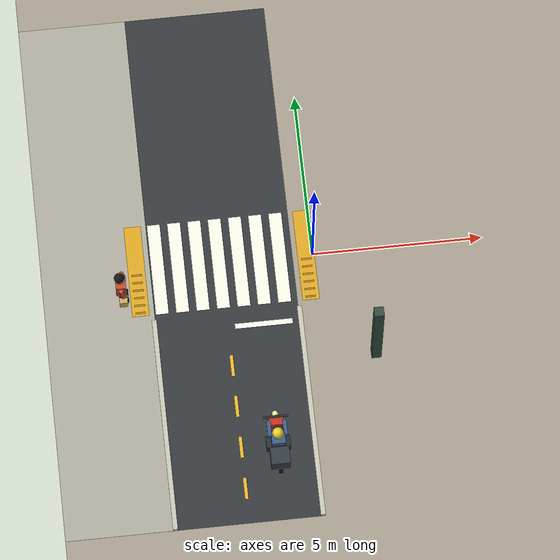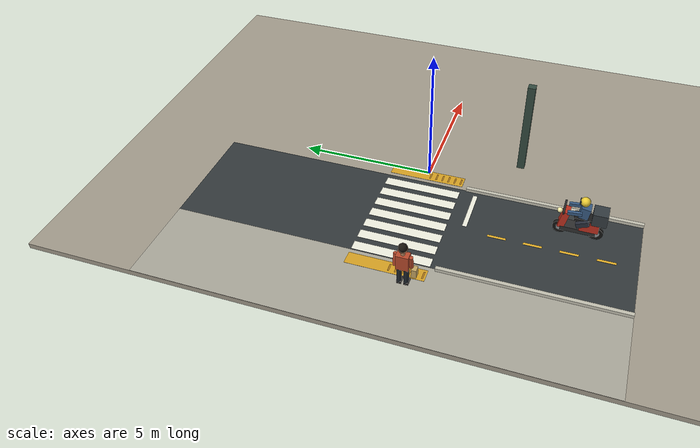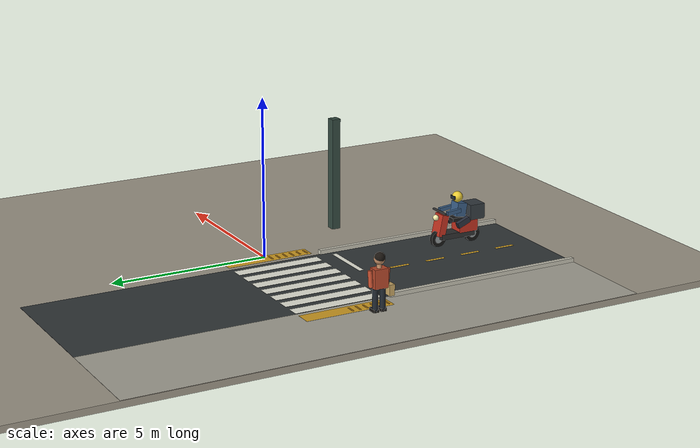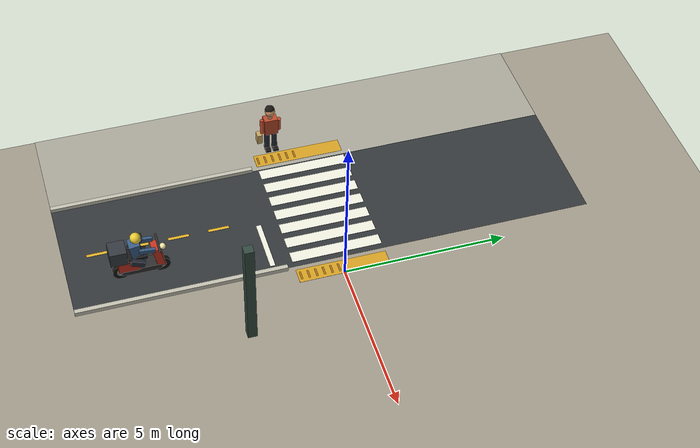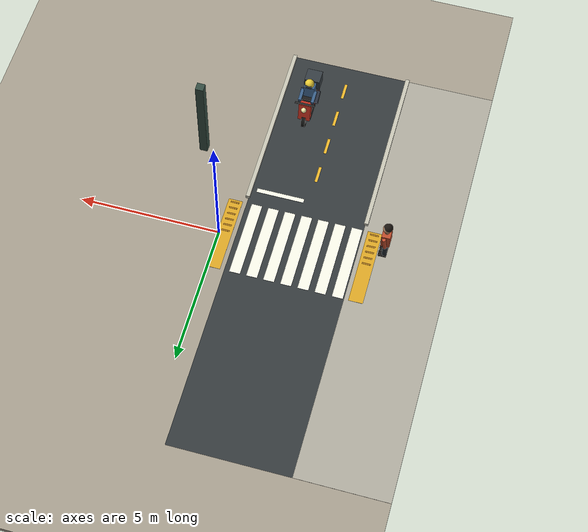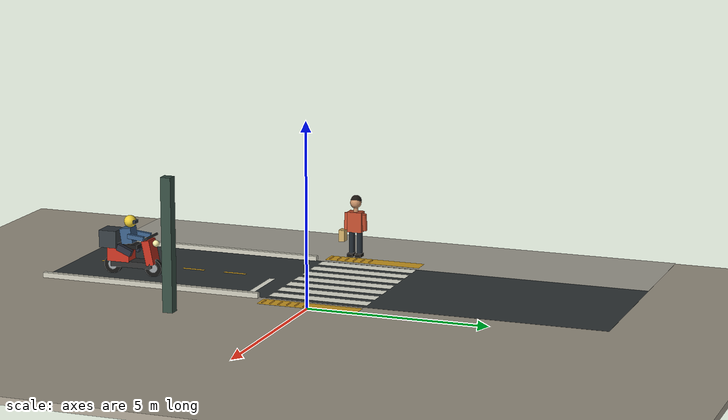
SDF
<sdf version="1.10">
 <world name="swan_market">
  <model name="ground">
   <static>true</static>
   <pose>15 0 -0.1 0 0 0</pose>
   <link name="body">
    <collision name="box_collision"><geometry><box><size>46 24 0.2</size></box></geometry></collision>
    <visual name="box_visual">
     <geometry><box><size>46 24 0.2</size></box></geometry>
     <material><ambient>0.64 0.61 0.55 1</ambient><diffuse>0.64 0.61 0.55 1</diffuse></material>
    </visual>
   </link>
  </model>
  <model name="paving_joint_-1">
   <static>true</static>
   <pose>-1 0 0.0045 0 0 0</pose>
   <link name="body">
    <visual name="box_visual">
     <geometry><box><size>0.025 5.2 0.001</size></box></geometry>
     <material><ambient>0.67 0.64 0.57 1</ambient><diffuse>0.67 0.64 0.57 1</diffuse></material>
    </visual>
   </link>
  </model>
  <model name="entrance_road">
   <static>true</static>
   <pose>-2.7 0 0.01 0 0 0</pose>
   <link name="body">
    <visual name="box_visual">
     <geometry><box><size>4.2 16 0.004</size></box></geometry>
     <material><ambient>0.2 0.22 0.23 1</ambient><diffuse>0.2 0.22 0.23 1</diffuse></material>
    </visual>
   </link>
  </model>
  <model name="entrance_sidewalk_west">
   <static>true</static>
   <pose>-6.4 0 0.014 0 0 0</pose>
   <link name="body">
    <visual name="box_visual">
     <geometry><box><size>3.2 16 0.004</size></box></geometry>
     <material><ambient>0.67 0.66 0.61 1</ambient><diffuse>0.67 0.66 0.61 1</diffuse></material>
    </visual>
   </link>
  </model>
  <model name="crosswalk_stripe_0">
   <static>true</static>
   <pose>-4.57 0 0.016 0 0 0</pose>
   <link name="body">
    <visual name="box_visual">
     <geometry><box><size>0.38 2.8 0.003</size></box></geometry>
     <material><ambient>0.95 0.95 0.89 1</ambient><diffuse>0.95 0.95 0.89 1</diffuse></material>
    </visual>
   </link>
  </model>
  <model name="crosswalk_stripe_1">
   <static>true</static>
   <pose>-3.97 0 0.016 0 0 0</pose>
   <link name="body">
    <visual name="box_visual">
     <geometry><box><size>0.38 2.8 0.003</size></box></geometry>
     <material><ambient>0.95 0.95 0.89 1</ambient><diffuse>0.95 0.95 0.89 1</diffuse></material>
    </visual>
   </link>
  </model>
  <model name="crosswalk_stripe_2">
   <static>true</static>
   <pose>-3.37 0 0.016 0 0 0</pose>
   <link name="body">
    <visual name="box_visual">
     <geometry><box><size>0.38 2.8 0.003</size></box></geometry>
     <material><ambient>0.95 0.95 0.89 1</ambient><diffuse>0.95 0.95 0.89 1</diffuse></material>
    </visual>
   </link>
  </model>
  <model name="crosswalk_stripe_3">
   <static>true</static>
   <pose>-2.77 0 0.016 0 0 0</pose>
   <link name="body">
    <visual name="box_visual">
     <geometry><box><size>0.38 2.8 0.003</size></box></geometry>
     <material><ambient>0.95 0.95 0.89 1</ambient><diffuse>0.95 0.95 0.89 1</diffuse></material>
    </visual>
   </link>
  </model>
  <model name="crosswalk_stripe_4">
   <static>true</static>
   <pose>-2.17 0 0.016 0 0 0</pose>
   <link name="body">
    <visual name="box_visual">
     <geometry><box><size>0.38 2.8 0.003</size></box></geometry>
     <material><ambient>0.95 0.95 0.89 1</ambient><diffuse>0.95 0.95 0.89 1</diffuse></material>
    </visual>
   </link>
  </model>
  <model name="crosswalk_stripe_5">
   <static>true</static>
   <pose>-1.57 0 0.016 0 0 0</pose>
   <link name="body">
    <visual name="box_visual">
     <geometry><box><size>0.38 2.8 0.003</size></box></geometry>
     <material><ambient>0.95 0.95 0.89 1</ambient><diffuse>0.95 0.95 0.89 1</diffuse></material>
    </visual>
   </link>
  </model>
  <model name="crosswalk_stripe_6">
   <static>true</static>
   <pose>-0.97 0 0.016 0 0 0</pose>
   <link name="body">
    <visual name="box_visual">
     <geometry><box><size>0.38 2.8 0.003</size></box></geometry>
     <material><ambient>0.95 0.95 0.89 1</ambient><diffuse>0.95 0.95 0.89 1</diffuse></material>
    </visual>
   </link>
  </model>
  <model name="entrance_curb_-4.83_-1">
   <static>true</static>
   <pose>-4.83 -4.8 0.07 0 0 0</pose>
   <link name="body">
    <collision name="box_collision"><geometry><box><size>0.14 6.4 0.14</size></box></geometry></collision>
    <visual name="box_visual">
     <geometry><box><size>0.14 6.4 0.14</size></box></geometry>
     <material><ambient>0.77 0.76 0.7 1</ambient><diffuse>0.77 0.76 0.7 1</diffuse></material>
    </visual>
   </link>
  </model>
  <model name="entrance_curb_-0.57_-1">
   <static>true</static>
   <pose>-0.57 -4.8 0.07 0 0 0</pose>
   <link name="body">
    <collision name="box_collision"><geometry><box><size>0.14 6.4 0.14</size></box></geometry></collision>
    <visual name="box_visual">
     <geometry><box><size>0.14 6.4 0.14</size></box></geometry>
     <material><ambient>0.77 0.76 0.7 1</ambient><diffuse>0.77 0.76 0.7 1</diffuse></material>
    </visual>
   </link>
  </model>
  <model name="road_stop_line_-1">
   <static>true</static>
   <pose>-1.65 -2 0.016 0 0 0</pose>
   <link name="body">
    <visual name="box_visual">
     <geometry><box><size>1.7 0.16 0.003</size></box></geometry>
     <material><ambient>0.95 0.95 0.89 1</ambient><diffuse>0.95 0.95 0.89 1</diffuse></material>
    </visual>
   </link>
  </model>
  <model name="road_center_line_-1_0">
   <static>true</static>
   <pose>-2.7 -3.2 0.016 0 0 0</pose>
   <link name="body">
    <visual name="box_visual">
     <geometry><box><size>0.1 0.65 0.003</size></box></geometry>
     <material><ambient>0.91 0.7 0.16 1</ambient><diffuse>0.91 0.7 0.16 1</diffuse></material>
    </visual>
   </link>
  </model>
  <model name="road_center_line_-1_1">
   <static>true</static>
   <pose>-2.7 -4.45 0.016 0 0 0</pose>
   <link name="body">
    <visual name="box_visual">
     <geometry><box><size>0.1 0.65 0.003</size></box></geometry>
     <material><ambient>0.91 0.7 0.16 1</ambient><diffuse>0.91 0.7 0.16 1</diffuse></material>
    </visual>
   </link>
  </model>
  <model name="road_center_line_-1_2">
   <static>true</static>
   <pose>-2.7 -5.7 0.016 0 0 0</pose>
   <link name="body">
    <visual name="box_visual">
     <geometry><box><size>0.1 0.65 0.003</size></box></geometry>
     <material><ambient>0.91 0.7 0.16 1</ambient><diffuse>0.91 0.7 0.16 1</diffuse></material>
    </visual>
   </link>
  </model>
  <model name="road_center_line_-1_3">
   <static>true</static>
   <pose>-2.7 -6.95 0.016 0 0 0</pose>
   <link name="body">
    <visual name="box_visual">
     <geometry><box><size>0.1 0.65 0.003</size></box></geometry>
     <material><ambient>0.91 0.7 0.16 1</ambient><diffuse>0.91 0.7 0.16 1</diffuse></material>
    </visual>
   </link>
  </model>
  <model name="crosswalk_tactile_0">
   <static>true</static>
   <pose>-5.2 0 0.019 0 0 0</pose>
   <link name="body">
    <visual name="box_visual">
     <geometry><box><size>0.5 2.8 0.003</size></box></geometry>
     <material><ambient>0.85 0.64 0.14 1</ambient><diffuse>0.85 0.64 0.14 1</diffuse></material>
    </visual>
   </link>
  </model>
  <model name="tactile_mark_0_0">
   <static>true</static>
   <pose>-5.2 -1.3 0.022 0 0 0</pose>
   <link name="body">
    <visual name="box_visual">
     <geometry><box><size>0.3 0.055 0.002</size></box></geometry>
     <material><ambient>0.69 0.47 0.1 1</ambient><diffuse>0.69 0.47 0.1 1</diffuse></material>
    </visual>
   </link>
  </model>
  <model name="tactile_mark_0_1">
   <static>true</static>
   <pose>-5.2 -1.065 0.022 0 0 0</pose>
   <link name="body">
    <visual name="box_visual">
     <geometry><box><size>0.3 0.055 0.002</size></box></geometry>
     <material><ambient>0.69 0.47 0.1 1</ambient><diffuse>0.69 0.47 0.1 1</diffuse></material>
    </visual>
   </link>
  </model>
  <model name="tactile_mark_0_2">
   <static>true</static>
   <pose>-5.2 -0.83 0.022 0 0 0</pose>
   <link name="body">
    <visual name="box_visual">
     <geometry><box><size>0.3 0.055 0.002</size></box></geometry>
     <material><ambient>0.69 0.47 0.1 1</ambient><diffuse>0.69 0.47 0.1 1</diffuse></material>
    </visual>
   </link>
  </model>
  <model name="tactile_mark_0_3">
   <static>true</static>
   <pose>-5.2 -0.595 0.022 0 0 0</pose>
   <link name="body">
    <visual name="box_visual">
     <geometry><box><size>0.3 0.055 0.002</size></box></geometry>
     <material><ambient>0.69 0.47 0.1 1</ambient><diffuse>0.69 0.47 0.1 1</diffuse></material>
    </visual>
   </link>
  </model>
  <model name="tactile_mark_0_4">
   <static>true</static>
   <pose>-5.2 -0.36 0.022 0 0 0</pose>
   <link name="body">
    <visual name="box_visual">
     <geometry><box><size>0.3 0.055 0.002</size></box></geometry>
     <material><ambient>0.69 0.47 0.1 1</ambient><diffuse>0.69 0.47 0.1 1</diffuse></material>
    </visual>
   </link>
  </model>
  <model name="tactile_mark_0_5">
   <static>true</static>
   <pose>-5.2 -0.125 0.022 0 0 0</pose>
   <link name="body">
    <visual name="box_visual">
     <geometry><box><size>0.3 0.055 0.002</size></box></geometry>
     <material><ambient>0.69 0.47 0.1 1</ambient><diffuse>0.69 0.47 0.1 1</diffuse></material>
    </visual>
   </link>
  </model>
  <model name="crosswalk_tactile_1">
   <static>true</static>
   <pose>-0.2 0 0.019 0 0 0</pose>
   <link name="body">
    <visual name="box_visual">
     <geometry><box><size>0.5 2.8 0.003</size></box></geometry>
     <material><ambient>0.85 0.64 0.14 1</ambient><diffuse>0.85 0.64 0.14 1</diffuse></material>
    </visual>
   </link>
  </model>
  <model name="tactile_mark_1_0">
   <static>true</static>
   <pose>-0.2 -1.3 0.022 0 0 0</pose>
   <link name="body">
    <visual name="box_visual">
     <geometry><box><size>0.3 0.055 0.002</size></box></geometry>
     <material><ambient>0.69 0.47 0.1 1</ambient><diffuse>0.69 0.47 0.1 1</diffuse></material>
    </visual>
   </link>
  </model>
  <model name="tactile_mark_1_1">
   <static>true</static>
   <pose>-0.2 -1.065 0.022 0 0 0</pose>
   <link name="body">
    <visual name="box_visual">
     <geometry><box><size>0.3 0.055 0.002</size></box></geometry>
     <material><ambient>0.69 0.47 0.1 1</ambient><diffuse>0.69 0.47 0.1 1</diffuse></material>
    </visual>
   </link>
  </model>
  <model name="tactile_mark_1_2">
   <static>true</static>
   <pose>-0.2 -0.83 0.022 0 0 0</pose>
   <link name="body">
    <visual name="box_visual">
     <geometry><box><size>0.3 0.055 0.002</size></box></geometry>
     <material><ambient>0.69 0.47 0.1 1</ambient><diffuse>0.69 0.47 0.1 1</diffuse></material>
    </visual>
   </link>
  </model>
  <model name="tactile_mark_1_3">
   <static>true</static>
   <pose>-0.2 -0.595 0.022 0 0 0</pose>
   <link name="body">
    <visual name="box_visual">
     <geometry><box><size>0.3 0.055 0.002</size></box></geometry>
     <material><ambient>0.69 0.47 0.1 1</ambient><diffuse>0.69 0.47 0.1 1</diffuse></material>
    </visual>
   </link>
  </model>
  <model name="tactile_mark_1_4">
   <static>true</static>
   <pose>-0.2 -0.36 0.022 0 0 0</pose>
   <link name="body">
    <visual name="box_visual">
     <geometry><box><size>0.3 0.055 0.002</size></box></geometry>
     <material><ambient>0.69 0.47 0.1 1</ambient><diffuse>0.69 0.47 0.1 1</diffuse></material>
    </visual>
   </link>
  </model>
  <model name="tactile_mark_1_5">
   <static>true</static>
   <pose>-0.2 -0.125 0.022 0 0 0</pose>
   <link name="body">
    <visual name="box_visual">
     <geometry><box><size>0.3 0.055 0.002</size></box></geometry>
     <material><ambient>0.69 0.47 0.1 1</ambient><diffuse>0.69 0.47 0.1 1</diffuse></material>
    </visual>
   </link>
  </model>
  <model name="entrance_post_-1">
   <static>true</static>
   <pose>1.5 -3.25 1.8 0 0 0</pose>
   <link name="body">
    <collision name="box_collision"><geometry><box><size>0.28 0.28 3.6</size></box></geometry></collision>
    <visual name="box_visual">
     <geometry><box><size>0.28 0.28 3.6</size></box></geometry>
     <material><ambient>0.2 0.29 0.25 1</ambient><diffuse>0.2 0.29 0.25 1</diffuse></material>
    </visual>
   </link>
  </model>
  <model name="crossing_pedestrian_1">
   <static>true</static>
   <pose>-5.7 -0.75 0 0 0 0</pose>
   <link name="body">
    <collision name="leg_-1_collision">
     <pose>0 -0.12 0.4 0 0 0</pose>
     <geometry><cylinder><radius>0.085</radius><length>0.68</length></cylinder></geometry>
    </collision>
    <visual name="leg_-1_visual">
     <pose>0 -0.12 0.4 0 0 0</pose>
     <geometry><cylinder><radius>0.085</radius><length>0.68</length></cylinder></geometry>
     <material><ambient>0.12 0.15 0.18 1</ambient><diffuse>0.12 0.15 0.18 1</diffuse></material>
    </visual>
    <collision name="shoe_-1_collision">
     <pose>0.06 -0.12 0.055 0 0 0</pose>
     <geometry><box><size>0.28 0.17 0.11</size></box></geometry>
    </collision>
    <visual name="shoe_-1_visual">
     <pose>0.06 -0.12 0.055 0 0 0</pose>
     <geometry><box><size>0.28 0.17 0.11</size></box></geometry>
     <material><ambient>0.08 0.07 0.06 1</ambient><diffuse>0.08 0.07 0.06 1</diffuse></material>
    </visual>
    <collision name="arm_-1_collision">
     <pose>0.02 -0.27 1.02 0 -0.12 0</pose>
     <geometry><cylinder><radius>0.068</radius><length>0.48</length></cylinder></geometry>
    </collision>
    <visual name="arm_-1_visual">
     <pose>0.02 -0.27 1.02 0 -0.12 0</pose>
     <geometry><cylinder><radius>0.068</radius><length>0.48</length></cylinder></geometry>
     <material><ambient>0.73 0.29 0.17 1</ambient><diffuse>0.73 0.29 0.17 1</diffuse></material>
    </visual>
    <collision name="leg_1_collision">
     <pose>0 0.12 0.4 0 0 0</pose>
     <geometry><cylinder><radius>0.085</radius><length>0.68</length></cylinder></geometry>
    </collision>
    <visual name="leg_1_visual">
     <pose>0 0.12 0.4 0 0 0</pose>
     <geometry><cylinder><radius>0.085</radius><length>0.68</length></cylinder></geometry>
     <material><ambient>0.12 0.15 0.18 1</ambient><diffuse>0.12 0.15 0.18 1</diffuse></material>
    </visual>
    <collision name="shoe_1_collision">
     <pose>0.06 0.12 0.055 0 0 0</pose>
     <geometry><box><size>0.28 0.17 0.11</size></box></geometry>
    </collision>
    <visual name="shoe_1_visual">
     <pose>0.06 0.12 0.055 0 0 0</pose>
     <geometry><box><size>0.28 0.17 0.11</size></box></geometry>
     <material><ambient>0.08 0.07 0.06 1</ambient><diffuse>0.08 0.07 0.06 1</diffuse></material>
    </visual>
    <collision name="arm_1_collision">
     <pose>0.02 0.27 1.02 0 0.12 0</pose>
     <geometry><cylinder><radius>0.068</radius><length>0.48</length></cylinder></geometry>
    </collision>
    <visual name="arm_1_visual">
     <pose>0.02 0.27 1.02 0 0.12 0</pose>
     <geometry><cylinder><radius>0.068</radius><length>0.48</length></cylinder></geometry>
     <material><ambient>0.73 0.29 0.17 1</ambient><diffuse>0.73 0.29 0.17 1</diffuse></material>
    </visual>
    <collision name="torso_collision">
     <pose>0 0 1.02 0 0 0</pose>
     <geometry><box><size>0.3 0.43 0.58</size></box></geometry>
    </collision>
    <visual name="torso_visual">
     <pose>0 0 1.02 0 0 0</pose>
     <geometry><box><size>0.3 0.43 0.58</size></box></geometry>
     <material><ambient>0.73 0.29 0.17 1</ambient><diffuse>0.73 0.29 0.17 1</diffuse></material>
    </visual>
    <visual name="neck_visual">
     <pose>0 0 1.37 0 0 0</pose>
     <geometry><cylinder><radius>0.07</radius><length>0.13</length></cylinder></geometry>
     <material><ambient>0.77 0.56 0.4 1</ambient><diffuse>0.77 0.56 0.4 1</diffuse></material>
    </visual>
    <collision name="head_collision">
     <pose>0 0 1.57 0 0 0</pose>
     <geometry><sphere><radius>0.16</radius></sphere></geometry>
    </collision>
    <visual name="head_visual">
     <pose>0 0 1.57 0 0 0</pose>
     <geometry><sphere><radius>0.16</radius></sphere></geometry>
     <material><ambient>0.77 0.56 0.4 1</ambient><diffuse>0.77 0.56 0.4 1</diffuse></material>
    </visual>
    <visual name="hair_visual">
     <pose>-0.025 0 1.63 0 0 0</pose>
     <geometry><sphere><radius>0.155</radius></sphere></geometry>
     <material><ambient>0.1 0.08 0.06 1</ambient><diffuse>0.1 0.08 0.06 1</diffuse></material>
    </visual>
    <collision name="shopping_bag_collision">
     <pose>0.04 -0.38 0.6 0 0 0</pose>
     <geometry><box><size>0.24 0.17 0.33</size></box></geometry>
    </collision>
    <visual name="shopping_bag_visual">
     <pose>0.04 -0.38 0.6 0 0 0</pose>
     <geometry><box><size>0.24 0.17 0.33</size></box></geometry>
     <material><ambient>0.78 0.65 0.39 1</ambient><diffuse>0.78 0.65 0.39 1</diffuse></material>
    </visual>
   </link>
  </model>
  <model name="traffic_motorcycle_1">
   <static>true</static>
   <pose>-1.65 -5.8 0 0 0 1.5708</pose>
   <link name="body">
    <collision name="tire_0_collision">
     <pose>-0.61 0 0.25 1.5708 0 0</pose>
     <geometry><cylinder><radius>0.25</radius><length>0.14</length></cylinder></geometry>
    </collision>
    <visual name="tire_0_visual">
     <pose>-0.61 0 0.25 1.5708 0 0</pose>
     <geometry><cylinder><radius>0.25</radius><length>0.14</length></cylinder></geometry>
     <material><ambient>0.075 0.075 0.07 1</ambient><diffuse>0.075 0.075 0.07 1</diffuse></material>
    </visual>
    <visual name="hub_0_visual">
     <pose>-0.61 0 0.25 1.5708 0 0</pose>
     <geometry><cylinder><radius>0.13</radius><length>0.145</length></cylinder></geometry>
     <material><ambient>0.57 0.59 0.6 1</ambient><diffuse>0.57 0.59 0.6 1</diffuse></material>
    </visual>
    <collision name="tire_1_collision">
     <pose>0.62 0 0.25 1.5708 0 0</pose>
     <geometry><cylinder><radius>0.25</radius><length>0.14</length></cylinder></geometry>
    </collision>
    <visual name="tire_1_visual">
     <pose>0.62 0 0.25 1.5708 0 0</pose>
     <geometry><cylinder><radius>0.25</radius><length>0.14</length></cylinder></geometry>
     <material><ambient>0.075 0.075 0.07 1</ambient><diffuse>0.075 0.075 0.07 1</diffuse></material>
    </visual>
    <visual name="hub_1_visual">
     <pose>0.62 0 0.25 1.5708 0 0</pose>
     <geometry><cylinder><radius>0.13</radius><length>0.145</length></cylinder></geometry>
     <material><ambient>0.57 0.59 0.6 1</ambient><diffuse>0.57 0.59 0.6 1</diffuse></material>
    </visual>
    <collision name="deck_collision">
     <pose>0 0 0.33 0 0 0</pose>
     <geometry><box><size>1.2 0.43 0.17</size></box></geometry>
    </collision>
    <visual name="deck_visual">
     <pose>0 0 0.33 0 0 0</pose>
     <geometry><box><size>1.2 0.43 0.17</size></box></geometry>
     <material><ambient>0.18 0.18 0.18 1</ambient><diffuse>0.18 0.18 0.18 1</diffuse></material>
    </visual>
    <collision name="rear_body_collision">
     <pose>-0.36 0 0.59 0 0 0</pose>
     <geometry><box><size>0.65 0.46 0.4</size></box></geometry>
    </collision>
    <visual name="rear_body_visual">
     <pose>-0.36 0 0.59 0 0 0</pose>
     <geometry><box><size>0.65 0.46 0.4</size></box></geometry>
     <material><ambient>0.76 0.19 0.12 1</ambient><diffuse>0.76 0.19 0.12 1</diffuse></material>
    </visual>
    <collision name="seat_collision">
     <pose>-0.2 0 0.83 0 0 0</pose>
     <geometry><box><size>0.8 0.4 0.12</size></box></geometry>
    </collision>
    <visual name="seat_visual">
     <pose>-0.2 0 0.83 0 0 0</pose>
     <geometry><box><size>0.8 0.4 0.12</size></box></geometry>
     <material><ambient>0.1 0.1 0.1 1</ambient><diffuse>0.1 0.1 0.1 1</diffuse></material>
    </visual>
    <collision name="front_fairing_collision">
     <pose>0.53 0 0.69 0 -0.2 0</pose>
     <geometry><box><size>0.23 0.43 0.69</size></box></geometry>
    </collision>
    <visual name="front_fairing_visual">
     <pose>0.53 0 0.69 0 -0.2 0</pose>
     <geometry><box><size>0.23 0.43 0.69</size></box></geometry>
     <material><ambient>0.76 0.19 0.12 1</ambient><diffuse>0.76 0.19 0.12 1</diffuse></material>
    </visual>
    <collision name="handlebar_collision">
     <pose>0.56 0 1.12 1.5708 0 0</pose>
     <geometry><cylinder><radius>0.035</radius><length>0.72</length></cylinder></geometry>
    </collision>
    <visual name="handlebar_visual">
     <pose>0.56 0 1.12 1.5708 0 0</pose>
     <geometry><cylinder><radius>0.035</radius><length>0.72</length></cylinder></geometry>
     <material><ambient>0.18 0.18 0.18 1</ambient><diffuse>0.18 0.18 0.18 1</diffuse></material>
    </visual>
    <visual name="headlight_visual">
     <pose>0.7 0 0.94 0 0 0</pose>
     <geometry><sphere><radius>0.095</radius></sphere></geometry>
     <material><ambient>0.96 0.92 0.66 1</ambient><diffuse>0.96 0.92 0.66 1</diffuse></material>
    </visual>
    <collision name="delivery_box_collision">
     <pose>-0.65 0 1.01 0 0 0</pose>
     <geometry><box><size>0.51 0.55 0.48</size></box></geometry>
    </collision>
    <visual name="delivery_box_visual">
     <pose>-0.65 0 1.01 0 0 0</pose>
     <geometry><box><size>0.51 0.55 0.48</size></box></geometry>
     <material><ambient>0.2 0.23 0.25 1</ambient><diffuse>0.2 0.23 0.25 1</diffuse></material>
    </visual>
    <collision name="rider_torso_collision">
     <pose>-0.12 0 1.12 0 -0.15 0</pose>
     <geometry><box><size>0.33 0.39 0.43</size></box></geometry>
    </collision>
    <visual name="rider_torso_visual">
     <pose>-0.12 0 1.12 0 -0.15 0</pose>
     <geometry><box><size>0.33 0.39 0.43</size></box></geometry>
     <material><ambient>0.22 0.36 0.52 1</ambient><diffuse>0.22 0.36 0.52 1</diffuse></material>
    </visual>
    <collision name="helmet_collision">
     <pose>-0.07 0 1.51 0 0 0</pose>
     <geometry><sphere><radius>0.17</radius></sphere></geometry>
    </collision>
    <visual name="helmet_visual">
     <pose>-0.07 0 1.51 0 0 0</pose>
     <geometry><sphere><radius>0.17</radius></sphere></geometry>
     <material><ambient>0.91 0.79 0.2 1</ambient><diffuse>0.91 0.79 0.2 1</diffuse></material>
    </visual>
    <visual name="visor_visual">
     <pose>0.087 0 1.51 0 0 0</pose>
     <geometry><box><size>0.045 0.23 0.1</size></box></geometry>
     <material><ambient>0.13 0.17 0.2 1</ambient><diffuse>0.13 0.17 0.2 1</diffuse></material>
    </visual>
    <collision name="rider_leg_-1_collision">
     <pose>-0.12 -0.28 0.75 0 0.4 0</pose>
     <geometry><box><size>0.44 0.14 0.18</size></box></geometry>
    </collision>
    <visual name="rider_leg_-1_visual">
     <pose>-0.12 -0.28 0.75 0 0.4 0</pose>
     <geometry><box><size>0.44 0.14 0.18</size></box></geometry>
     <material><ambient>0.16 0.18 0.23 1</ambient><diffuse>0.16 0.18 0.23 1</diffuse></material>
    </visual>
    <collision name="rider_arm_-1_collision">
     <pose>0.2 -0.23 1.12 0 0.1 0</pose>
     <geometry><box><size>0.48 0.11 0.12</size></box></geometry>
    </collision>
    <visual name="rider_arm_-1_visual">
     <pose>0.2 -0.23 1.12 0 0.1 0</pose>
     <geometry><box><size>0.48 0.11 0.12</size></box></geometry>
     <material><ambient>0.22 0.36 0.52 1</ambient><diffuse>0.22 0.36 0.52 1</diffuse></material>
    </visual>
    <collision name="rider_leg_1_collision">
     <pose>-0.12 0.28 0.75 0 0.4 0</pose>
     <geometry><box><size>0.44 0.14 0.18</size></box></geometry>
    </collision>
    <visual name="rider_leg_1_visual">
     <pose>-0.12 0.28 0.75 0 0.4 0</pose>
     <geometry><box><size>0.44 0.14 0.18</size></box></geometry>
     <material><ambient>0.16 0.18 0.23 1</ambient><diffuse>0.16 0.18 0.23 1</diffuse></material>
    </visual>
    <collision name="rider_arm_1_collision">
     <pose>0.2 0.23 1.12 0 0.1 0</pose>
     <geometry><box><size>0.48 0.11 0.12</size></box></geometry>
    </collision>
    <visual name="rider_arm_1_visual">
     <pose>0.2 0.23 1.12 0 0.1 0</pose>
     <geometry><box><size>0.48 0.11 0.12</size></box></geometry>
     <material><ambient>0.22 0.36 0.52 1</ambient><diffuse>0.22 0.36 0.52 1</diffuse></material>
    </visual>
   </link>
  </model>
 </world>
</sdf>
